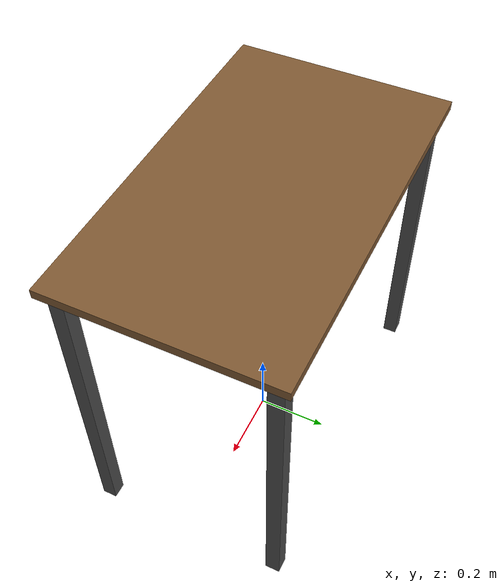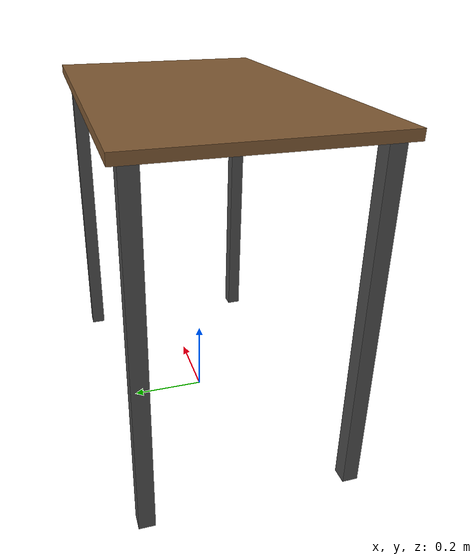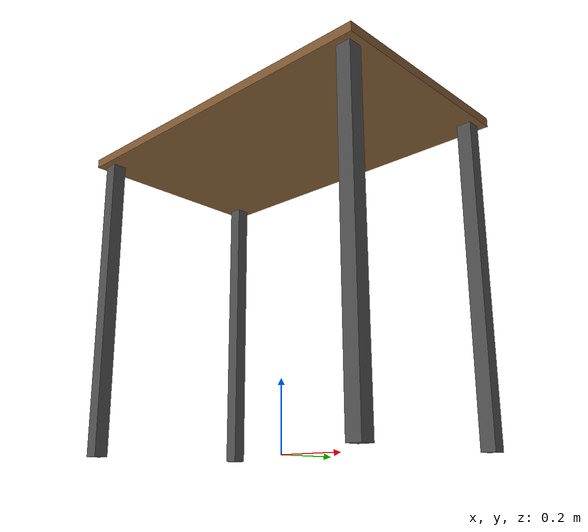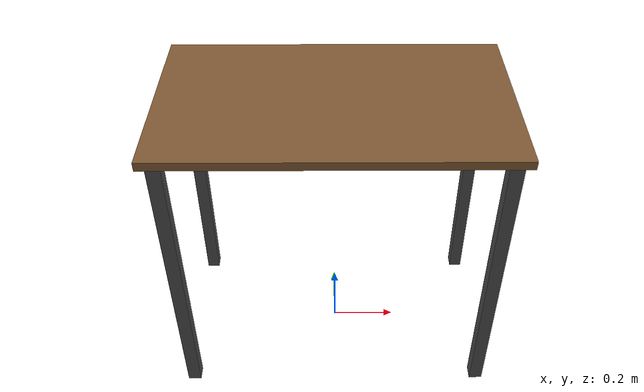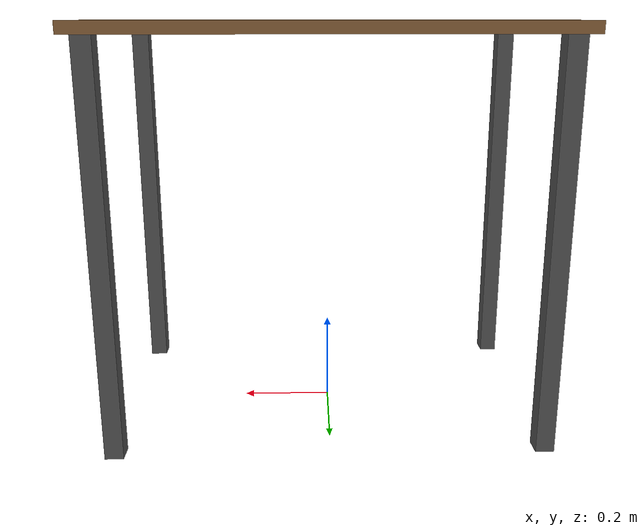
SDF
<?xml version="1.0" ?>
<sdf version="1.10">
  <model name="workbench">
    <static>true</static>

    <!-- Bench top: 1.0 x 0.6 x 0.025 m, top surface at z=0.900 -->
    <link name="top">
      <pose>0 0 0.8875 0 0 0</pose>
      <collision name="collision">
        <geometry>
          <box><size>1.0 0.6 0.025</size></box>
        </geometry>
      </collision>
      <visual name="visual">
        <geometry>
          <box><size>1.0 0.6 0.025</size></box>
        </geometry>
        <material>
          <ambient>0.3 0.2 0.1 1</ambient>
          <diffuse>0.5 0.35 0.2 1</diffuse>
        </material>
      </visual>
    </link>

    <!-- Four legs: 4040 extrusion, 0.875m long -->
    <link name="leg_front_left">
      <pose>0.46 0.26 0.4375 0 0 0</pose>
      <collision name="collision">
        <geometry><box><size>0.04 0.04 0.875</size></box></geometry>
      </collision>
      <visual name="visual">
        <geometry><box><size>0.04 0.04 0.875</size></box></geometry>
        <material>
          <ambient>0.2 0.2 0.2 1</ambient>
          <diffuse>0.3 0.3 0.3 1</diffuse>
        </material>
      </visual>
    </link>

    <link name="leg_front_right">
      <pose>0.46 -0.26 0.4375 0 0 0</pose>
      <collision name="collision">
        <geometry><box><size>0.04 0.04 0.875</size></box></geometry>
      </collision>
      <visual name="visual">
        <geometry><box><size>0.04 0.04 0.875</size></box></geometry>
        <material>
          <ambient>0.2 0.2 0.2 1</ambient>
          <diffuse>0.3 0.3 0.3 1</diffuse>
        </material>
      </visual>
    </link>

    <link name="leg_back_left">
      <pose>-0.46 0.26 0.4375 0 0 0</pose>
      <collision name="collision">
        <geometry><box><size>0.04 0.04 0.875</size></box></geometry>
      </collision>
      <visual name="visual">
        <geometry><box><size>0.04 0.04 0.875</size></box></geometry>
        <material>
          <ambient>0.2 0.2 0.2 1</ambient>
          <diffuse>0.3 0.3 0.3 1</diffuse>
        </material>
      </visual>
    </link>

    <link name="leg_back_right">
      <pose>-0.46 -0.26 0.4375 0 0 0</pose>
      <collision name="collision">
        <geometry><box><size>0.04 0.04 0.875</size></box></geometry>
      </collision>
      <visual name="visual">
        <geometry><box><size>0.04 0.04 0.875</size></box></geometry>
        <material>
          <ambient>0.2 0.2 0.2 1</ambient>
          <diffuse>0.3 0.3 0.3 1</diffuse>
        </material>
      </visual>
    </link>

  </model>
</sdf>
